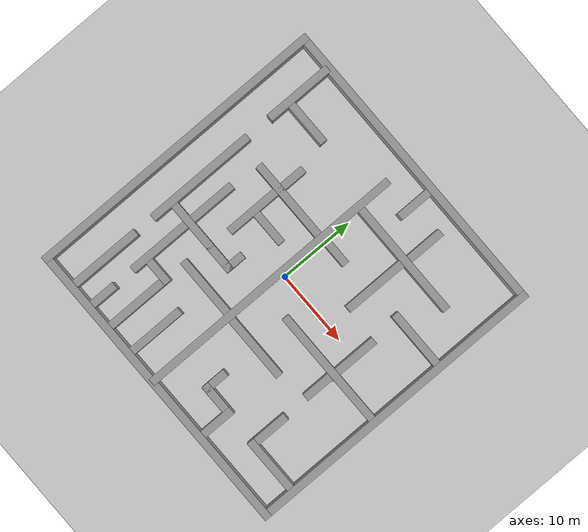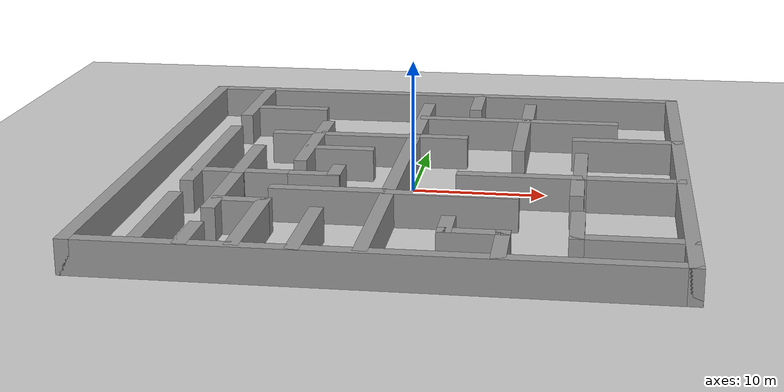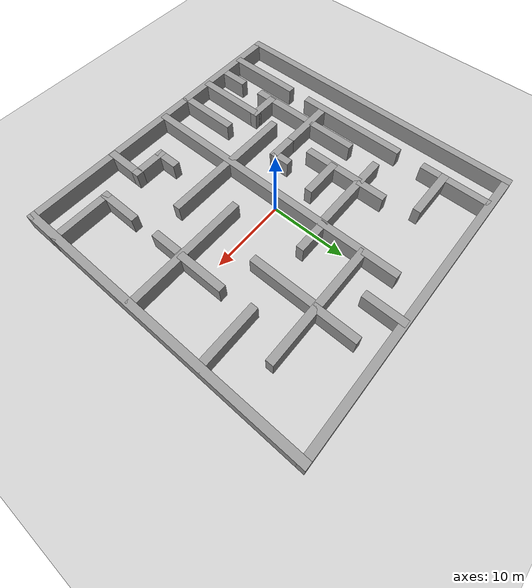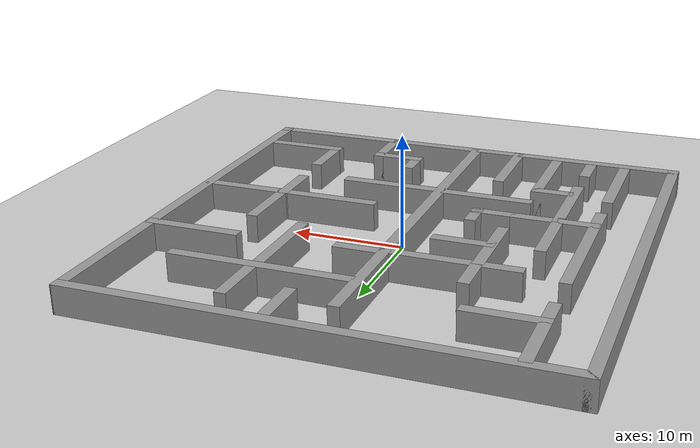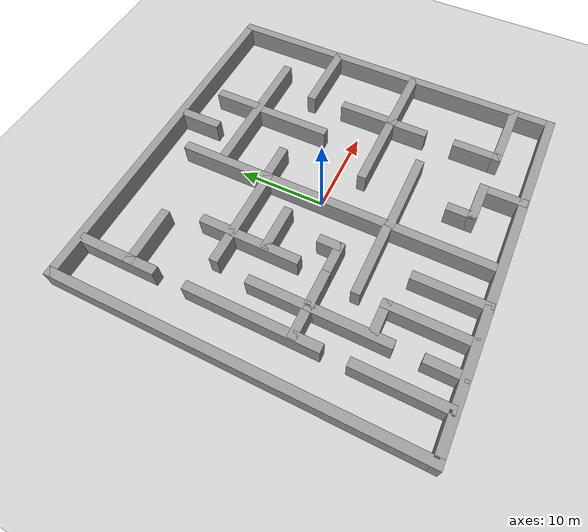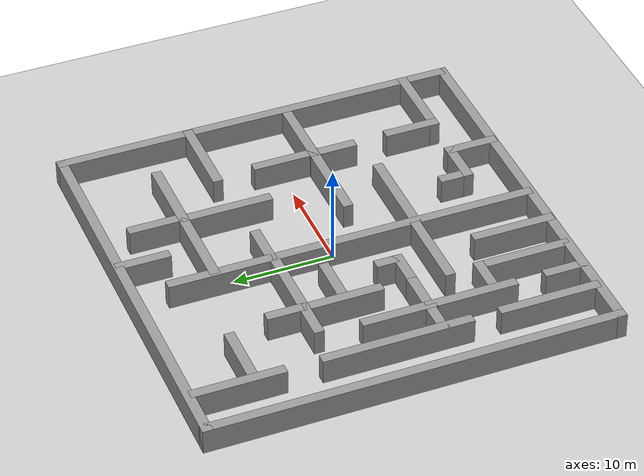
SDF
<sdf version="1.7">
 <world name="default">
  <light name="sun" type="directional">
   <pose>0 0 10 0 -0 0</pose>
   <diffuse>0.8 0.8 0.8 1</diffuse>
   <specular>0.2 0.2 0.2 1</specular>
   <attenuation>
    <range>1000</range>
    <constant>0.9</constant>
    <linear>0.01</linear>
    <quadratic>0.001</quadratic>
   </attenuation>
   <direction>-0.5 0.1 -0.9</direction>
   <spot><inner_angle>0</inner_angle><outer_angle>0</outer_angle><falloff>0</falloff></spot>
  </light>
  <model name="ground_plane">
   <static>1</static>
   <link name="link">
    <collision name="collision">
     <geometry><plane><normal>0 0 1</normal><size>100 100</size></plane></geometry>
     <surface><friction><ode><mu>100</mu><mu2>50</mu2></ode></friction></surface>
    </collision>
    <visual name="visual">
     <cast_shadows>0</cast_shadows>
     <geometry><plane><normal>0 0 1</normal><size>100 100</size></plane></geometry>
     <material>
      <script><uri>file://media/materials/scripts/gazebo.material</uri><name>Gazebo/Grey</name></script>
     </material>
    </visual>
   </link>
  </model>
  <gravity>0 0 -9.8</gravity>
  <magnetic_field>6e-06 2.3e-05 -4.2e-05</magnetic_field>
  <atmosphere type="adiabatic"/>
  <physics type="ode">
   <max_step_size>0.001</max_step_size>
   <real_time_factor>1</real_time_factor>
   <real_time_update_rate>1000</real_time_update_rate>
  </physics>
  <scene><ambient>0.4 0.4 0.4 1</ambient><background>0.7 0.7 0.7 1</background><shadows>1</shadows></scene>
  <spherical_coordinates>
   <surface_model>EARTH_WGS84</surface_model>
   <latitude_deg>0</latitude_deg>
   <longitude_deg>0</longitude_deg>
   <elevation>0</elevation>
   <heading_deg>0</heading_deg>
  </spherical_coordinates>
  <model name="demo10">
   <pose>0.001048 0 0 0 -0 0</pose>
   <link name="Wall_0">
    <collision name="Wall_0_Collision">
     <geometry><box><size>41 1 2.5</size></box></geometry>
     <pose>0 0 1.25 0 -0 0</pose>
    </collision>
    <visual name="Wall_0_Visual">
     <pose>0 0 1.25 0 -0 0</pose>
     <geometry><box><size>41 1 2.5</size></box></geometry>
     <material>
      <script><uri>file://media/materials/scripts/gazebo.material</uri><name>Gazebo/Grey</name></script>
      <ambient>1 1 1 1</ambient>
     </material>
     <meta><layer>0</layer></meta>
    </visual>
    <pose>-20.001 0 0 0 -0 1.5708</pose>
   </link>
   <link name="Wall_13">
    <collision name="Wall_13_Collision">
     <geometry><box><size>36.8499 1 2.5</size></box></geometry>
     <pose>0 0 1.25 0 -0 0</pose>
    </collision>
    <visual name="Wall_13_Visual">
     <pose>0 0 1.25 0 -0 0</pose>
     <geometry><box><size>36.8499 1 2.5</size></box></geometry>
     <material>
      <script><uri>file://media/materials/scripts/gazebo.material</uri><name>Gazebo/Grey</name></script>
      <ambient>1 1 1 1</ambient>
     </material>
     <meta><layer>0</layer></meta>
    </visual>
    <pose>-0.733048 -1.72 0 0 -0 1.5708</pose>
   </link>
   <link name="Wall_15">
    <collision name="Wall_15_Collision">
     <geometry><box><size>9.10017 1 2.5</size></box></geometry>
     <pose>0 0 1.25 0 -0 0</pose>
    </collision>
    <visual name="Wall_15_Visual">
     <pose>0 0 1.25 0 -0 0</pose>
     <geometry><box><size>9.10017 1 2.5</size></box></geometry>
     <material>
      <script><uri>file://media/materials/scripts/gazebo.material</uri><name>Gazebo/Grey</name></script>
      <ambient>1 1 1 1</ambient>
     </material>
     <meta><layer>0</layer></meta>
    </visual>
    <pose>-15.516 15.336 0 0 -0 -1.5708</pose>
   </link>
   <link name="Wall_18">
    <collision name="Wall_18_Collision">
     <geometry><box><size>6.84987 1 2.5</size></box></geometry>
     <pose>0 0 1.25 0 -0 0</pose>
    </collision>
    <visual name="Wall_18_Visual">
     <pose>0 0 1.25 0 -0 0</pose>
     <geometry><box><size>6.84987 1 2.5</size></box></geometry>
     <material>
      <script><uri>file://media/materials/scripts/gazebo.material</uri><name>Gazebo/Grey</name></script>
      <ambient>1 1 1 1</ambient>
     </material>
     <meta><layer>0</layer></meta>
    </visual>
    <pose>-12.591 13.806 0 0 -0 0</pose>
   </link>
   <link name="Wall_2">
    <collision name="Wall_2_Collision">
     <geometry><box><size>41 1 2.5</size></box></geometry>
     <pose>0 0 1.25 0 -0 0</pose>
    </collision>
    <visual name="Wall_2_Visual">
     <pose>0 0 1.25 0 -0 0</pose>
     <geometry><box><size>41 1 2.5</size></box></geometry>
     <material>
      <script><uri>file://media/materials/scripts/gazebo.material</uri><name>Gazebo/Grey</name></script>
      <ambient>1 1 1 1</ambient>
     </material>
     <meta><layer>0</layer></meta>
    </visual>
    <pose>-0.001048 -20 0 0 -0 0</pose>
   </link>
   <link name="Wall_22">
    <collision name="Wall_22_Collision">
     <geometry><box><size>14.85 1 2.5</size></box></geometry>
     <pose>0 0 1.25 0 -0 0</pose>
    </collision>
    <visual name="Wall_22_Visual">
     <pose>0 0 1.25 0 -0 0</pose>
     <geometry><box><size>14.85 1 2.5</size></box></geometry>
     <material>
      <script><uri>file://media/materials/scripts/gazebo.material</uri><name>Gazebo/Grey</name></script>
      <ambient>1 1 1 1</ambient>
     </material>
     <meta><layer>0</layer></meta>
    </visual>
    <pose>-15.516 0.011 0 0 -0 -1.5708</pose>
   </link>
   <link name="Wall_24">
    <collision name="Wall_24_Collision">
     <geometry><box><size>10.1 1 2.5</size></box></geometry>
     <pose>0 0 1.25 0 -0 0</pose>
    </collision>
    <visual name="Wall_24_Visual">
     <pose>0 0 1.25 0 -0 0</pose>
     <geometry><box><size>10.1 1 2.5</size></box></geometry>
     <material>
      <script><uri>file://media/materials/scripts/gazebo.material</uri><name>Gazebo/Grey</name></script>
      <ambient>1 1 1 1</ambient>
     </material>
     <meta><layer>0</layer></meta>
    </visual>
    <pose>-15.516 -15.064 0 0 -0 -1.5708</pose>
   </link>
   <link name="Wall_26">
    <collision name="Wall_26_Collision">
     <geometry><box><size>7.6 1 2.5</size></box></geometry>
     <pose>0 0 1.25 0 -0 0</pose>
    </collision>
    <visual name="Wall_26_Visual">
     <pose>0 0 1.25 0 -0 0</pose>
     <geometry><box><size>7.6 1 2.5</size></box></geometry>
     <material>
      <script><uri>file://media/materials/scripts/gazebo.material</uri><name>Gazebo/Grey</name></script>
      <ambient>1 1 1 1</ambient>
     </material>
     <meta><layer>0</layer></meta>
    </visual>
    <pose>-12.1017 -4.437 0 0 -0 0</pose>
   </link>
   <link name="Wall_28">
    <collision name="Wall_28_Collision">
     <geometry><box><size>3.85 1 2.5</size></box></geometry>
     <pose>0 0 1.25 0 -0 0</pose>
    </collision>
    <visual name="Wall_28_Visual">
     <pose>0 0 1.25 0 -0 0</pose>
     <geometry><box><size>3.85 1 2.5</size></box></geometry>
     <material>
      <script><uri>file://media/materials/scripts/gazebo.material</uri><name>Gazebo/Grey</name></script>
      <ambient>1 1 1 1</ambient>
     </material>
     <meta><layer>0</layer></meta>
    </visual>
    <pose>-6.69869 -4.44333 0 0 -0 0</pose>
   </link>
   <link name="Wall_32">
    <collision name="Wall_32_Collision">
     <geometry><box><size>9.10038 1 2.5</size></box></geometry>
     <pose>0 0 1.25 0 -0 0</pose>
    </collision>
    <visual name="Wall_32_Visual">
     <pose>0 0 1.25 0 -0 0</pose>
     <geometry><box><size>9.10038 1 2.5</size></box></geometry>
     <material>
      <script><uri>file://media/materials/scripts/gazebo.material</uri><name>Gazebo/Grey</name></script>
      <ambient>1 1 1 1</ambient>
     </material>
     <meta><layer>0</layer></meta>
    </visual>
    <pose>-12.359 -8.66 0 0 -0 -1.5708</pose>
   </link>
   <link name="Wall_34">
    <collision name="Wall_34_Collision">
     <geometry><box><size>4.35035 1 2.5</size></box></geometry>
     <pose>0 0 1.25 0 -0 0</pose>
    </collision>
    <visual name="Wall_34_Visual">
     <pose>0 0 1.25 0 -0 0</pose>
     <geometry><box><size>4.35035 1 2.5</size></box></geometry>
     <material>
      <script><uri>file://media/materials/scripts/gazebo.material</uri><name>Gazebo/Grey</name></script>
      <ambient>1 1 1 1</ambient>
     </material>
     <meta><layer>0</layer></meta>
    </visual>
    <pose>-12.325 -18.168 0 0 -0 1.5708</pose>
   </link>
   <link name="Wall_37">
    <collision name="Wall_37_Collision">
     <geometry><box><size>4.1752 1 2.5</size></box></geometry>
     <pose>0 0 1.25 0 -0 0</pose>
    </collision>
    <visual name="Wall_37_Visual">
     <pose>0 0 1.25 0 -0 0</pose>
     <geometry><box><size>4.1752 1 2.5</size></box></geometry>
     <material>
      <script><uri>file://media/materials/scripts/gazebo.material</uri><name>Gazebo/Grey</name></script>
      <ambient>1 1 1 1</ambient>
     </material>
     <meta><layer>0</layer></meta>
    </visual>
    <pose>-10.5774 -11.021 0 0 -0 0</pose>
   </link>
   <link name="Wall_38">
    <collision name="Wall_38_Collision">
     <geometry><box><size>9.6 1 2.5</size></box></geometry>
     <pose>0 0 1.25 0 -0 0</pose>
    </collision>
    <visual name="Wall_38_Visual">
     <pose>0 0 1.25 0 -0 0</pose>
     <geometry><box><size>9.6 1 2.5</size></box></geometry>
     <material>
      <script><uri>file://media/materials/scripts/gazebo.material</uri><name>Gazebo/Grey</name></script>
      <ambient>1 1 1 1</ambient>
     </material>
     <meta><layer>0</layer></meta>
    </visual>
    <pose>-8.98985 -15.321 0 0 -0 -1.5708</pose>
   </link>
   <link name="Wall_4">
    <collision name="Wall_4_Collision">
     <geometry><box><size>41 1 2.5</size></box></geometry>
     <pose>0 0 1.25 0 -0 0</pose>
    </collision>
    <visual name="Wall_4_Visual">
     <pose>0 0 1.25 0 -0 0</pose>
     <geometry><box><size>41 1 2.5</size></box></geometry>
     <material>
      <script><uri>file://media/materials/scripts/gazebo.material</uri><name>Gazebo/Grey</name></script>
      <ambient>1 1 1 1</ambient>
     </material>
     <meta><layer>0</layer></meta>
    </visual>
    <pose>19.999 0 0 0 -0 1.5708</pose>
   </link>
   <link name="Wall_40">
    <collision name="Wall_40_Collision">
     <geometry><box><size>8.35023 1 2.5</size></box></geometry>
     <pose>0 0 1.25 0 -0 0</pose>
    </collision>
    <visual name="Wall_40_Visual">
     <pose>0 0 1.25 0 -0 0</pose>
     <geometry><box><size>8.35023 1 2.5</size></box></geometry>
     <material>
      <script><uri>file://media/materials/scripts/gazebo.material</uri><name>Gazebo/Grey</name></script>
      <ambient>1 1 1 1</ambient>
     </material>
     <meta><layer>0</layer></meta>
    </visual>
    <pose>-5.09205 -7.956 0 0 -0 3.14159</pose>
   </link>
   <link name="Wall_42">
    <collision name="Wall_42_Collision">
     <geometry><box><size>8.34957 1 2.5</size></box></geometry>
     <pose>0 0 1.25 0 -0 0</pose>
    </collision>
    <visual name="Wall_42_Visual">
     <pose>0 0 1.25 0 -0 0</pose>
     <geometry><box><size>8.34957 1 2.5</size></box></geometry>
     <material>
      <script><uri>file://media/materials/scripts/gazebo.material</uri><name>Gazebo/Grey</name></script>
      <ambient>1 1 1 1</ambient>
     </material>
     <meta><layer>0</layer></meta>
    </visual>
    <pose>-5.05105 -16.239 0 0 -0 1.5708</pose>
   </link>
   <link name="Wall_45">
    <collision name="Wall_45_Collision">
     <geometry><box><size>11.8496 1 2.5</size></box></geometry>
     <pose>0 0 1.25 0 -0 0</pose>
    </collision>
    <visual name="Wall_45_Visual">
     <pose>0 0 1.25 0 -0 0</pose>
     <geometry><box><size>11.8496 1 2.5</size></box></geometry>
     <material>
      <script><uri>file://media/materials/scripts/gazebo.material</uri><name>Gazebo/Grey</name></script>
      <ambient>1 1 1 1</ambient>
     </material>
     <meta><layer>0</layer></meta>
    </visual>
    <pose>-6.19305 6.216 0 0 -0 3.14159</pose>
   </link>
   <link name="Wall_48">
    <collision name="Wall_48_Collision">
     <geometry><box><size>7.35 1 2.5</size></box></geometry>
     <pose>0 0 1.25 0 -0 0</pose>
    </collision>
    <visual name="Wall_48_Visual">
     <pose>0 0 1.25 0 -0 0</pose>
     <geometry><box><size>7.35 1 2.5</size></box></geometry>
     <material>
      <script><uri>file://media/materials/scripts/gazebo.material</uri><name>Gazebo/Grey</name></script>
      <ambient>1 1 1 1</ambient>
     </material>
     <meta><layer>0</layer></meta>
    </visual>
    <pose>-12.359 -1.435 0 0 -0 1.5708</pose>
   </link>
   <link name="Wall_50">
    <collision name="Wall_50_Collision">
     <geometry><box><size>7.8501 1 2.5</size></box></geometry>
     <pose>0 0 1.25 0 -0 0</pose>
    </collision>
    <visual name="Wall_50_Visual">
     <pose>0 0 1.25 0 -0 0</pose>
     <geometry><box><size>7.8501 1 2.5</size></box></geometry>
     <material>
      <script><uri>file://media/materials/scripts/gazebo.material</uri><name>Gazebo/Grey</name></script>
      <ambient>1 1 1 1</ambient>
     </material>
     <meta><layer>0</layer></meta>
    </visual>
    <pose>-8.39505 2.394 0 0 -0 -1.5708</pose>
   </link>
   <link name="Wall_52">
    <collision name="Wall_52_Collision">
     <geometry><box><size>5.3503 1 2.5</size></box></geometry>
     <pose>0 0 1.25 0 -0 0</pose>
    </collision>
    <visual name="Wall_52_Visual">
     <pose>0 0 1.25 0 -0 0</pose>
     <geometry><box><size>5.3503 1 2.5</size></box></geometry>
     <material>
      <script><uri>file://media/materials/scripts/gazebo.material</uri><name>Gazebo/Grey</name></script>
      <ambient>1 1 1 1</ambient>
     </material>
     <meta><layer>0</layer></meta>
    </visual>
    <pose>-6.01405 2.291 0 0 -0 0</pose>
   </link>
   <link name="Wall_54">
    <collision name="Wall_54_Collision">
     <geometry><box><size>2.6 1 2.5</size></box></geometry>
     <pose>0 0 1.25 0 -0 0</pose>
    </collision>
    <visual name="Wall_54_Visual">
     <pose>0 0 1.25 0 -0 0</pose>
     <geometry><box><size>2.6 1 2.5</size></box></geometry>
     <material>
      <script><uri>file://media/materials/scripts/gazebo.material</uri><name>Gazebo/Grey</name></script>
      <ambient>1 1 1 1</ambient>
     </material>
     <meta><layer>0</layer></meta>
    </visual>
    <pose>-5.25429 -3.41298 0 0 -0 1.5708</pose>
   </link>
   <link name="Wall_56">
    <collision name="Wall_56_Collision">
     <geometry><box><size>3.85031 1 2.5</size></box></geometry>
     <pose>0 0 1.25 0 -0 0</pose>
    </collision>
    <visual name="Wall_56_Visual">
     <pose>0 0 1.25 0 -0 0</pose>
     <geometry><box><size>3.85031 1 2.5</size></box></geometry>
     <material>
      <script><uri>file://media/materials/scripts/gazebo.material</uri><name>Gazebo/Grey</name></script>
      <ambient>1 1 1 1</ambient>
     </material>
     <meta><layer>0</layer></meta>
    </visual>
    <pose>-8.32205 8.011 0 0 -0 1.5708</pose>
   </link>
   <link name="Wall_59">
    <collision name="Wall_59_Collision">
     <geometry><box><size>8.3502 1 2.5</size></box></geometry>
     <pose>0 0 1.25 0 -0 0</pose>
    </collision>
    <visual name="Wall_59_Visual">
     <pose>0 0 1.25 0 -0 0</pose>
     <geometry><box><size>8.3502 1 2.5</size></box></geometry>
     <material>
      <script><uri>file://media/materials/scripts/gazebo.material</uri><name>Gazebo/Grey</name></script>
      <ambient>1 1 1 1</ambient>
     </material>
     <meta><layer>0</layer></meta>
    </visual>
    <pose>16.326 -15.744 0 0 -0 3.14159</pose>
   </link>
   <link name="Wall_6">
    <collision name="Wall_6_Collision">
     <geometry><box><size>41 1 2.5</size></box></geometry>
     <pose>0 0 1.25 0 -0 0</pose>
    </collision>
    <visual name="Wall_6_Visual">
     <pose>0 0 1.25 0 -0 0</pose>
     <geometry><box><size>41 1 2.5</size></box></geometry>
     <material>
      <script><uri>file://media/materials/scripts/gazebo.material</uri><name>Gazebo/Grey</name></script>
      <ambient>1 1 1 1</ambient>
     </material>
     <meta><layer>0</layer></meta>
    </visual>
    <pose>-0.001048 20 0 0 -0 0</pose>
   </link>
   <link name="Wall_60">
    <collision name="Wall_60_Collision">
     <geometry><box><size>5.60034 1 2.5</size></box></geometry>
     <pose>0 0 1.25 0 -0 0</pose>
    </collision>
    <visual name="Wall_60_Visual">
     <pose>0 0 1.25 0 -0 0</pose>
     <geometry><box><size>5.60034 1 2.5</size></box></geometry>
     <material>
      <script><uri>file://media/materials/scripts/gazebo.material</uri><name>Gazebo/Grey</name></script>
      <ambient>1 1 1 1</ambient>
     </material>
     <meta><layer>0</layer></meta>
    </visual>
    <pose>12.651 -13.444 0 0 -0 1.5708</pose>
   </link>
   <link name="Wall_63">
    <collision name="Wall_63_Collision">
     <geometry><box><size>5.35 1 2.5</size></box></geometry>
     <pose>0 0 1.25 0 -0 0</pose>
    </collision>
    <visual name="Wall_63_Visual">
     <pose>0 0 1.25 0 -0 0</pose>
     <geometry><box><size>5.35 1 2.5</size></box></geometry>
     <material>
      <script><uri>file://media/materials/scripts/gazebo.material</uri><name>Gazebo/Grey</name></script>
      <ambient>1 1 1 1</ambient>
     </material>
     <meta><layer>0</layer></meta>
    </visual>
    <pose>7.91695 -17.725 0 0 -0 1.5708</pose>
   </link>
   <link name="Wall_64">
    <collision name="Wall_64_Collision">
     <geometry><box><size>4.85 1 2.5</size></box></geometry>
     <pose>0 0 1.25 0 -0 0</pose>
    </collision>
    <visual name="Wall_64_Visual">
     <pose>0 0 1.25 0 -0 0</pose>
     <geometry><box><size>4.85 1 2.5</size></box></geometry>
     <material>
      <script><uri>file://media/materials/scripts/gazebo.material</uri><name>Gazebo/Grey</name></script>
      <ambient>1 1 1 1</ambient>
     </material>
     <meta><layer>0</layer></meta>
    </visual>
    <pose>5.99195 -15.55 0 0 -0 3.14159</pose>
   </link>
   <link name="Wall_65">
    <collision name="Wall_65_Collision">
     <geometry><box><size>3.34968 1 2.5</size></box></geometry>
     <pose>0 0 1.25 0 -0 0</pose>
    </collision>
    <visual name="Wall_65_Visual">
     <pose>0 0 1.25 0 -0 0</pose>
     <geometry><box><size>3.34968 1 2.5</size></box></geometry>
     <material>
      <script><uri>file://media/materials/scripts/gazebo.material</uri><name>Gazebo/Grey</name></script>
      <ambient>1 1 1 1</ambient>
     </material>
     <meta><layer>0</layer></meta>
    </visual>
    <pose>4.06695 -14.375 0 0 -0 1.5708</pose>
   </link>
   <link name="Wall_67">
    <collision name="Wall_67_Collision">
     <geometry><box><size>9.59983 1 2.5</size></box></geometry>
     <pose>0 0 1.25 0 -0 0</pose>
    </collision>
    <visual name="Wall_67_Visual">
     <pose>0 0 1.25 0 -0 0</pose>
     <geometry><box><size>9.59983 1 2.5</size></box></geometry>
     <material>
      <script><uri>file://media/materials/scripts/gazebo.material</uri><name>Gazebo/Grey</name></script>
      <ambient>1 1 1 1</ambient>
     </material>
     <meta><layer>0</layer></meta>
    </visual>
    <pose>3.71095 -8.107 0 0 -0 0</pose>
   </link>
   <link name="Wall_69">
    <collision name="Wall_69_Collision">
     <geometry><box><size>16.6002 1 2.5</size></box></geometry>
     <pose>0 0 1.25 0 -0 0</pose>
    </collision>
    <visual name="Wall_69_Visual">
     <pose>0 0 1.25 0 -0 0</pose>
     <geometry><box><size>16.6002 1 2.5</size></box></geometry>
     <material>
      <script><uri>file://media/materials/scripts/gazebo.material</uri><name>Gazebo/Grey</name></script>
      <ambient>1 1 1 1</ambient>
     </material>
     <meta><layer>0</layer></meta>
    </visual>
    <pose>11.911 -3.08 0 0 -0 3.14159</pose>
   </link>
   <link name="Wall_71">
    <collision name="Wall_71_Collision">
     <geometry><box><size>4.85034 1 2.5</size></box></geometry>
     <pose>0 0 1.25 0 -0 0</pose>
    </collision>
    <visual name="Wall_71_Visual">
     <pose>0 0 1.25 0 -0 0</pose>
     <geometry><box><size>4.85034 1 2.5</size></box></geometry>
     <material>
      <script><uri>file://media/materials/scripts/gazebo.material</uri><name>Gazebo/Grey</name></script>
      <ambient>1 1 1 1</ambient>
     </material>
     <meta><layer>0</layer></meta>
    </visual>
    <pose>12.461 -5.005 0 0 -0 -1.5708</pose>
   </link>
   <link name="Wall_75">
    <collision name="Wall_75_Collision">
     <geometry><box><size>16.3499 1 2.5</size></box></geometry>
     <pose>0 0 1.25 0 -0 0</pose>
    </collision>
    <visual name="Wall_75_Visual">
     <pose>0 0 1.25 0 -0 0</pose>
     <geometry><box><size>16.3499 1 2.5</size></box></geometry>
     <material>
      <script><uri>file://media/materials/scripts/gazebo.material</uri><name>Gazebo/Grey</name></script>
      <ambient>1 1 1 1</ambient>
     </material>
     <meta><layer>0</layer></meta>
    </visual>
    <pose>7.20795 12.054 0 0 -0 0</pose>
   </link>
   <link name="Wall_78">
    <collision name="Wall_78_Collision">
     <geometry><box><size>5.35022 1 2.5</size></box></geometry>
     <pose>0 0 1.25 0 -0 0</pose>
    </collision>
    <visual name="Wall_78_Visual">
     <pose>0 0 1.25 0 -0 0</pose>
     <geometry><box><size>5.35022 1 2.5</size></box></geometry>
     <material>
      <script><uri>file://media/materials/scripts/gazebo.material</uri><name>Gazebo/Grey</name></script>
      <ambient>1 1 1 1</ambient>
     </material>
     <meta><layer>0</layer></meta>
    </visual>
    <pose>3.39995 17.613 0 0 -0 -1.5708</pose>
   </link>
   <link name="Wall_80">
    <collision name="Wall_80_Collision">
     <geometry><box><size>5.85012 1 2.5</size></box></geometry>
     <pose>0 0 1.25 0 -0 0</pose>
    </collision>
    <visual name="Wall_80_Visual">
     <pose>0 0 1.25 0 -0 0</pose>
     <geometry><box><size>5.85012 1 2.5</size></box></geometry>
     <material>
      <script><uri>file://media/materials/scripts/gazebo.material</uri><name>Gazebo/Grey</name></script>
      <ambient>1 1 1 1</ambient>
     </material>
     <meta><layer>0</layer></meta>
    </visual>
    <pose>7.94295 14.576 0 0 -0 1.5708</pose>
   </link>
   <link name="Wall_82">
    <collision name="Wall_82_Collision">
     <geometry><box><size>8.59986 1 2.5</size></box></geometry>
     <pose>0 0 1.25 0 -0 0</pose>
    </collision>
    <visual name="Wall_82_Visual">
     <pose>0 0 1.25 0 -0 0</pose>
     <geometry><box><size>8.59986 1 2.5</size></box></geometry>
     <material>
      <script><uri>file://media/materials/scripts/gazebo.material</uri><name>Gazebo/Grey</name></script>
      <ambient>1 1 1 1</ambient>
     </material>
     <meta><layer>0</layer></meta>
    </visual>
    <pose>16.093 7.028 0 0 -0 0</pose>
   </link>
   <link name="Wall_84">
    <collision name="Wall_84_Collision">
     <geometry><box><size>9.09954 1 2.5</size></box></geometry>
     <pose>0 0 1.25 0 -0 0</pose>
    </collision>
    <visual name="Wall_84_Visual">
     <pose>0 0 1.25 0 -0 0</pose>
     <geometry><box><size>9.09954 1 2.5</size></box></geometry>
     <material>
      <script><uri>file://media/materials/scripts/gazebo.material</uri><name>Gazebo/Grey</name></script>
      <ambient>1 1 1 1</ambient>
     </material>
     <meta><layer>0</layer></meta>
    </visual>
    <pose>7.74995 7.714 0 0 -0 -1.5708</pose>
   </link>
   <link name="Wall_86">
    <collision name="Wall_86_Collision">
     <geometry><box><size>6.8502 1 2.5</size></box></geometry>
     <pose>0 0 1.25 0 -0 0</pose>
    </collision>
    <visual name="Wall_86_Visual">
     <pose>0 0 1.25 0 -0 0</pose>
     <geometry><box><size>6.8502 1 2.5</size></box></geometry>
     <material>
      <script><uri>file://media/materials/scripts/gazebo.material</uri><name>Gazebo/Grey</name></script>
      <ambient>1 1 1 1</ambient>
     </material>
     <meta><layer>0</layer></meta>
    </visual>
    <pose>12.583 -0.247 0 0 -0 -1.5708</pose>
   </link>
   <link name="Wall_88">
    <collision name="Wall_88_Collision">
     <geometry><box><size>4.60021 1 2.5</size></box></geometry>
     <pose>0 0 1.25 0 -0 0</pose>
    </collision>
    <visual name="Wall_88_Visual">
     <pose>0 0 1.25 0 -0 0</pose>
     <geometry><box><size>4.60021 1 2.5</size></box></geometry>
     <material>
      <script><uri>file://media/materials/scripts/gazebo.material</uri><name>Gazebo/Grey</name></script>
      <ambient>1 1 1 1</ambient>
     </material>
     <meta><layer>0</layer></meta>
    </visual>
    <pose>1.23595 6.448 0 0 -0 0</pose>
   </link>
   <static>1</static>
  </model>
 </world>
</sdf>
